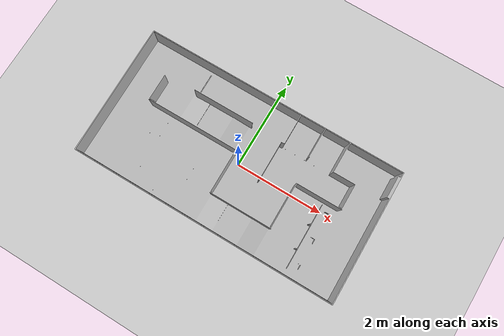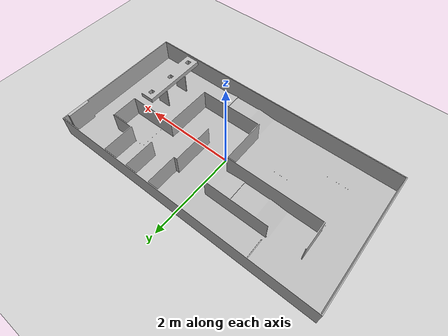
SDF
<?xml version="1.0" ?>
<sdf version="1.8">
  <world name="competition_world">

    <physics name="1ms" type="ignored">
      <max_step_size>0.001</max_step_size>
      <real_time_factor>1.0</real_time_factor>
    </physics>

    <plugin filename="gz-sim-physics-system" name="gz::sim::systems::Physics"/>
    <plugin filename="gz-sim-sensors-system" name="gz::sim::systems::Sensors">
      <render_engine>ogre</render_engine>
    </plugin>
    <plugin filename="gz-sim-user-commands-system" name="gz::sim::systems::UserCommands"/>
    <plugin filename="gz-sim-scene-broadcaster-system" name="gz::sim::systems::SceneBroadcaster"/>

    <light type="directional" name="sun">
      <cast_shadows>true</cast_shadows>
      <pose>0 0 10 0 0 0</pose>
      <diffuse>0.8 0.8 0.8 1</diffuse>
      <specular>0.2 0.2 0.2 1</specular>
      <attenuation>
        <range>1000</range>
        <constant>0.9</constant>
        <linear>0.01</linear>
        <quadratic>0.001</quadratic>
      </attenuation>
      <direction>-0.5 0.1 -0.9</direction>
    </light>

    <model name="ground_plane">
      <static>true</static>
      <link name="link">
        <collision name="collision">
          <geometry>
            <plane>
              <normal>0 0 1</normal>
            </plane>
          </geometry>
        </collision>
        <visual name="visual">
          <geometry>
            <plane>
              <normal>0 0 1</normal>
              <size>20 20</size>
            </plane>
          </geometry>
          <material>
            <ambient>0.8 0.8 0.8 1</ambient>
          </material>
        </visual>
      </link>
    </model>

    <!-- SPAWN YOUR GAMEFIELD -->
    <include>
      <uri>model://gamefield</uri>
      <pose>0 0 0 0 0 3.14</pose> <!-- This places the center of the maze at the center of the world -->
    </include>

  </world>
</sdf>

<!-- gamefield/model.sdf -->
<sdf version="1.8">
  <model name="gamefield">
    <static>true</static>
    <link name="walls_link">
      <visual name="visual">
        <geometry>
          <mesh>
            <uri>model://gamefield/meshes/gamefield_fixed.obj</uri>
          </mesh>
        </geometry>
      </visual>
      <collision name="collision">
        <geometry>
          <mesh>
            <uri>model://gamefield/meshes/gamefield_fixed.stl</uri>
          </mesh>
        </geometry>
      </collision>
    </link>
  </model>
</sdf>
